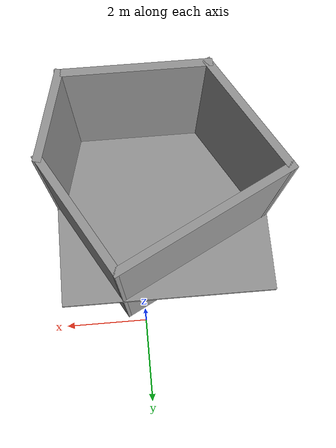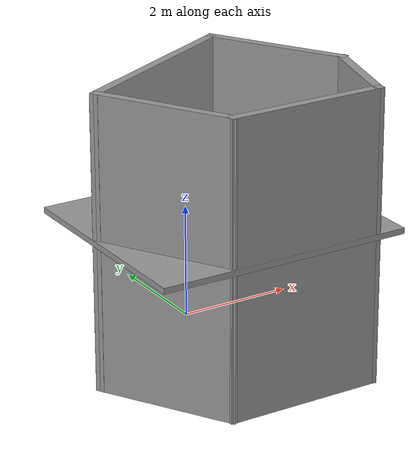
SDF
<?xml version='1.0'?>
<sdf version='1.6'>
  <model name='world'>
    <pose frame=''>-0.518437 -1.99134 0 0 -0 0</pose>
    <link name='Floor_0'>
      <collision name='Floor_0_Collision'>
        <geometry>
          <box>
            <size>4.39401 3.78554 0.1</size>
          </box>
        </geometry>
        <pose frame=''>0 0 0.05 0 -0 0</pose>
      </collision>
      <visual name='Floor_0_Visual'>
        <pose frame=''>0 0 0.05 0 -0 0</pose>
        <geometry>
          <box>
            <size>4.39401 3.78554 0.1</size>
          </box>
        </geometry>
        <material>
          <script>
            <uri>file://media/materials/scripts/gazebo.material</uri>
            <name>Gazebo/Grey</name>
          </script>
          <ambient>1 1 1 1</ambient>
        </material>
        <meta>
          <layer>1</layer>
        </meta>
      </visual>
      <pose frame=''>0 0 2.5 0 -0 0</pose>
    </link>
    <link name='Wall_0'>
      <collision name='Wall_0_Collision'>
        <geometry>
          <box>
            <size>2.5 0.15 2.5</size>
          </box>
        </geometry>
        <pose frame=''>0 0 1.25 0 -0 0</pose>
      </collision>
      <visual name='Wall_0_Visual'>
        <pose frame=''>0 0 1.25 0 -0 0</pose>
        <geometry>
          <box>
            <size>2.5 0.15 2.5</size>
          </box>
        </geometry>
        <material>
          <script>
            <uri>file://media/materials/scripts/gazebo.material</uri>
            <name>Gazebo/Grey</name>
          </script>
          <ambient>1 1 1 1</ambient>
        </material>
        <meta>
          <layer>0</layer>
        </meta>
      </visual>
      <pose frame=''>-1.50706 -0.772741 0 0 -0 -1.0472</pose>
    </link>
    <link name='Wall_1'>
      <collision name='Wall_1_Collision'>
        <geometry>
          <box>
            <size>2.75 0.15 2.5</size>
          </box>
        </geometry>
        <pose frame=''>0 0 1.25 0 -0 0</pose>
      </collision>
      <visual name='Wall_1_Visual'>
        <pose frame=''>0 0 1.25 0 -0 0</pose>
        <geometry>
          <box>
            <size>2.75 0.15 2.5</size>
          </box>
        </geometry>
        <material>
          <script>
            <uri>file://media/materials/scripts/gazebo.material</uri>
            <name>Gazebo/Grey</name>
          </script>
          <ambient>1 1 1 1</ambient>
        </material>
        <meta>
          <layer>0</layer>
        </meta>
      </visual>
      <pose frame=''>0.380445 -1.79032 0 0 -0 0</pose>
    </link>
    <link name='Wall_10'>
      <collision name='Wall_10_Collision'>
        <geometry>
          <box>
            <size>3.53724 0.15 2.5</size>
          </box>
        </geometry>
        <pose frame=''>0 0 1.25 0 -0 0</pose>
      </collision>
      <visual name='Wall_10_Visual'>
        <pose frame=''>0 0 1.25 0 -0 0</pose>
        <geometry>
          <box>
            <size>3.53724 0.15 2.5</size>
          </box>
        </geometry>
        <material>
          <script>
            <uri>file://media/materials/scripts/gazebo.material</uri>
            <name>Gazebo/Grey</name>
          </script>
          <ambient>1 1 1 1</ambient>
        </material>
        <meta>
          <layer>1</layer>
        </meta>
      </visual>
      <pose frame=''>-0.5875 1.01758 2.5 0 -0 -2.6678</pose>
    </link>
    <link name='Wall_2'>
      <collision name='Wall_2_Collision'>
        <geometry>
          <box>
            <size>1.75 0.15 2.5</size>
          </box>
        </geometry>
        <pose frame=''>0 0 1.25 0 -0 0</pose>
      </collision>
      <visual name='Wall_2_Visual'>
        <pose frame=''>0 0 1.25 0 -0 0</pose>
        <geometry>
          <box>
            <size>1.75 0.15 2.5</size>
          </box>
        </geometry>
        <material>
          <script>
            <uri>file://media/materials/scripts/gazebo.material</uri>
            <name>Gazebo/Grey</name>
          </script>
          <ambient>1 1 1 1</ambient>
        </material>
        <meta>
          <layer>0</layer>
        </meta>
      </visual>
      <pose frame=''>1.8875 -1.01758 0 0 -0 1.309</pose>
    </link>
    <link name='Wall_3'>
      <collision name='Wall_3_Collision'>
        <geometry>
          <box>
            <size>2.5 0.15 2.5</size>
          </box>
        </geometry>
        <pose frame=''>0 0 1.25 0 -0 0</pose>
      </collision>
      <visual name='Wall_3_Visual'>
        <pose frame=''>0 0 1.25 0 -0 0</pose>
        <geometry>
          <box>
            <size>2.5 0.15 2.5</size>
          </box>
        </geometry>
        <material>
          <script>
            <uri>file://media/materials/scripts/gazebo.material</uri>
            <name>Gazebo/Grey</name>
          </script>
          <ambient>1 1 1 1</ambient>
        </material>
        <meta>
          <layer>0</layer>
        </meta>
      </visual>
      <pose frame=''>1.50706 0.772741 0 0 -0 2.0944</pose>
    </link>
    <link name='Wall_4'>
      <collision name='Wall_4_Collision'>
        <geometry>
          <box>
            <size>3.53724 0.15 2.5</size>
          </box>
        </geometry>
        <pose frame=''>0 0 1.25 0 -0 0</pose>
      </collision>
      <visual name='Wall_4_Visual'>
        <pose frame=''>0 0 1.25 0 -0 0</pose>
        <geometry>
          <box>
            <size>3.53724 0.15 2.5</size>
          </box>
        </geometry>
        <material>
          <script>
            <uri>file://media/materials/scripts/gazebo.material</uri>
            <name>Gazebo/Grey</name>
          </script>
          <ambient>1 1 1 1</ambient>
        </material>
        <meta>
          <layer>0</layer>
        </meta>
      </visual>
      <pose frame=''>-0.5875 1.01758 0 0 -0 -2.6678</pose>
    </link>
    <link name='Wall_6'>
      <collision name='Wall_6_Collision'>
        <geometry>
          <box>
            <size>2.5 0.15 2.5</size>
          </box>
        </geometry>
        <pose frame=''>0 0 1.25 0 -0 0</pose>
      </collision>
      <visual name='Wall_6_Visual'>
        <pose frame=''>0 0 1.25 0 -0 0</pose>
        <geometry>
          <box>
            <size>2.5 0.15 2.5</size>
          </box>
        </geometry>
        <material>
          <script>
            <uri>file://media/materials/scripts/gazebo.material</uri>
            <name>Gazebo/Grey</name>
          </script>
          <ambient>1 1 1 1</ambient>
        </material>
        <meta>
          <layer>1</layer>
        </meta>
      </visual>
      <pose frame=''>-1.50706 -0.772741 2.5 0 -0 -1.0472</pose>
    </link>
    <link name='Wall_7'>
      <collision name='Wall_7_Collision'>
        <geometry>
          <box>
            <size>2.75 0.15 2.5</size>
          </box>
        </geometry>
        <pose frame=''>0 0 1.25 0 -0 0</pose>
      </collision>
      <visual name='Wall_7_Visual'>
        <pose frame=''>0 0 1.25 0 -0 0</pose>
        <geometry>
          <box>
            <size>2.75 0.15 2.5</size>
          </box>
        </geometry>
        <material>
          <script>
            <uri>file://media/materials/scripts/gazebo.material</uri>
            <name>Gazebo/Grey</name>
          </script>
          <ambient>1 1 1 1</ambient>
        </material>
        <meta>
          <layer>1</layer>
        </meta>
      </visual>
      <pose frame=''>0.380445 -1.79032 2.5 0 -0 0</pose>
    </link>
    <link name='Wall_8'>
      <collision name='Wall_8_Collision'>
        <geometry>
          <box>
            <size>1.75 0.15 2.5</size>
          </box>
        </geometry>
        <pose frame=''>0 0 1.25 0 -0 0</pose>
      </collision>
      <visual name='Wall_8_Visual'>
        <pose frame=''>0 0 1.25 0 -0 0</pose>
        <geometry>
          <box>
            <size>1.75 0.15 2.5</size>
          </box>
        </geometry>
        <material>
          <script>
            <uri>file://media/materials/scripts/gazebo.material</uri>
            <name>Gazebo/Grey</name>
          </script>
          <ambient>1 1 1 1</ambient>
        </material>
        <meta>
          <layer>1</layer>
        </meta>
      </visual>
      <pose frame=''>1.8875 -1.01758 2.5 0 -0 1.309</pose>
    </link>
    <link name='Wall_9'>
      <collision name='Wall_9_Collision'>
        <geometry>
          <box>
            <size>2.5 0.15 2.5</size>
          </box>
        </geometry>
        <pose frame=''>0 0 1.25 0 -0 0</pose>
      </collision>
      <visual name='Wall_9_Visual'>
        <pose frame=''>0 0 1.25 0 -0 0</pose>
        <geometry>
          <box>
            <size>2.5 0.15 2.5</size>
          </box>
        </geometry>
        <material>
          <script>
            <uri>file://media/materials/scripts/gazebo.material</uri>
            <name>Gazebo/Grey</name>
          </script>
          <ambient>1 1 1 1</ambient>
        </material>
        <meta>
          <layer>1</layer>
        </meta>
      </visual>
      <pose frame=''>1.50706 0.772741 2.5 0 -0 2.0944</pose>
    </link>
    <static>1</static>
  </model>
</sdf>
